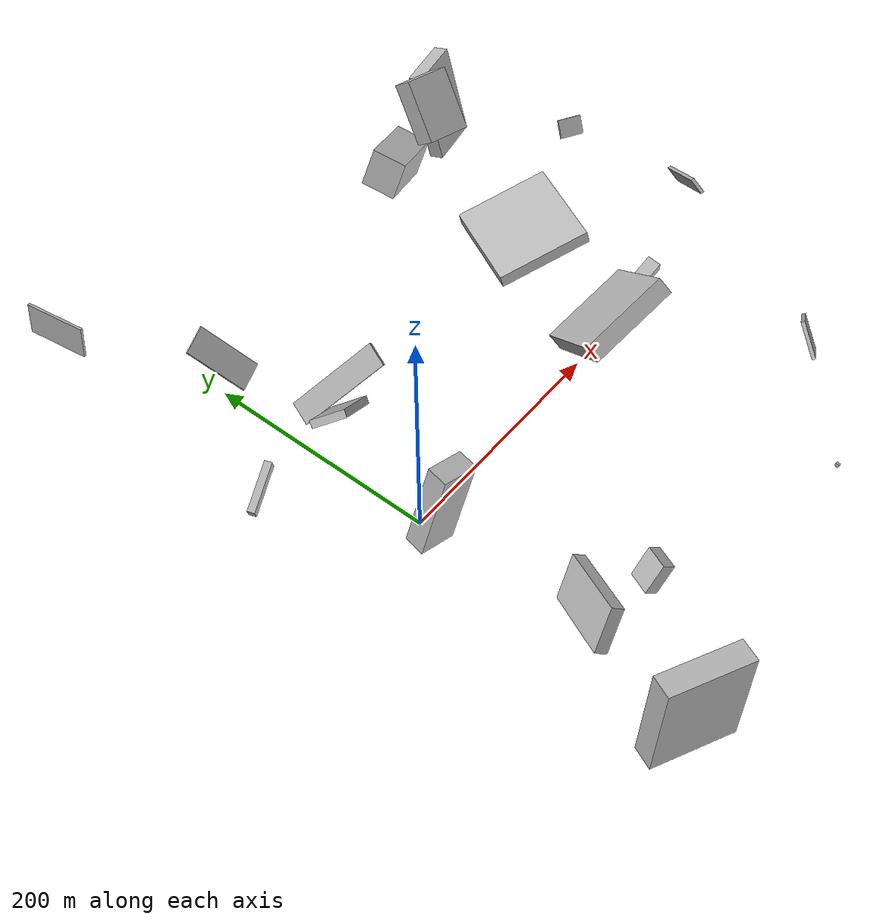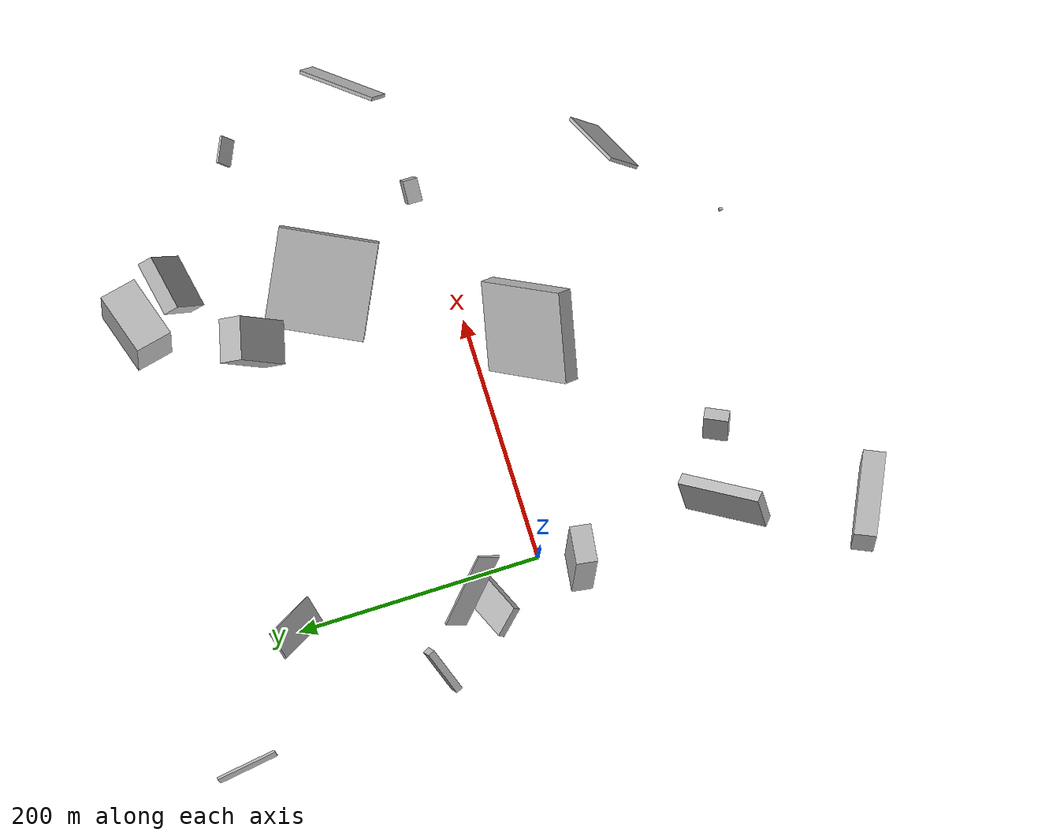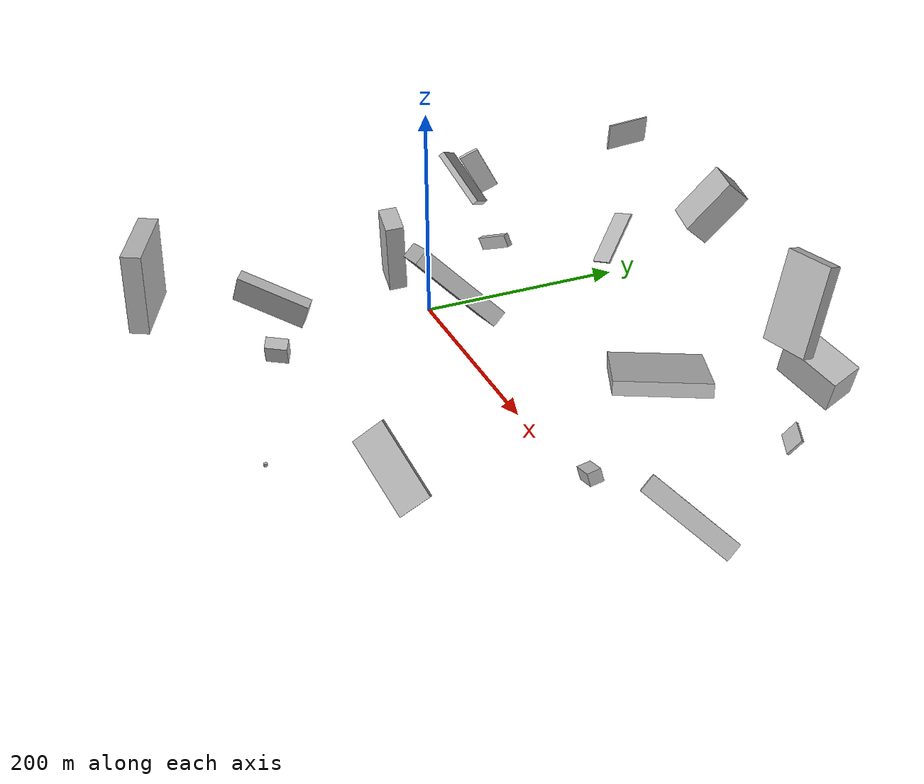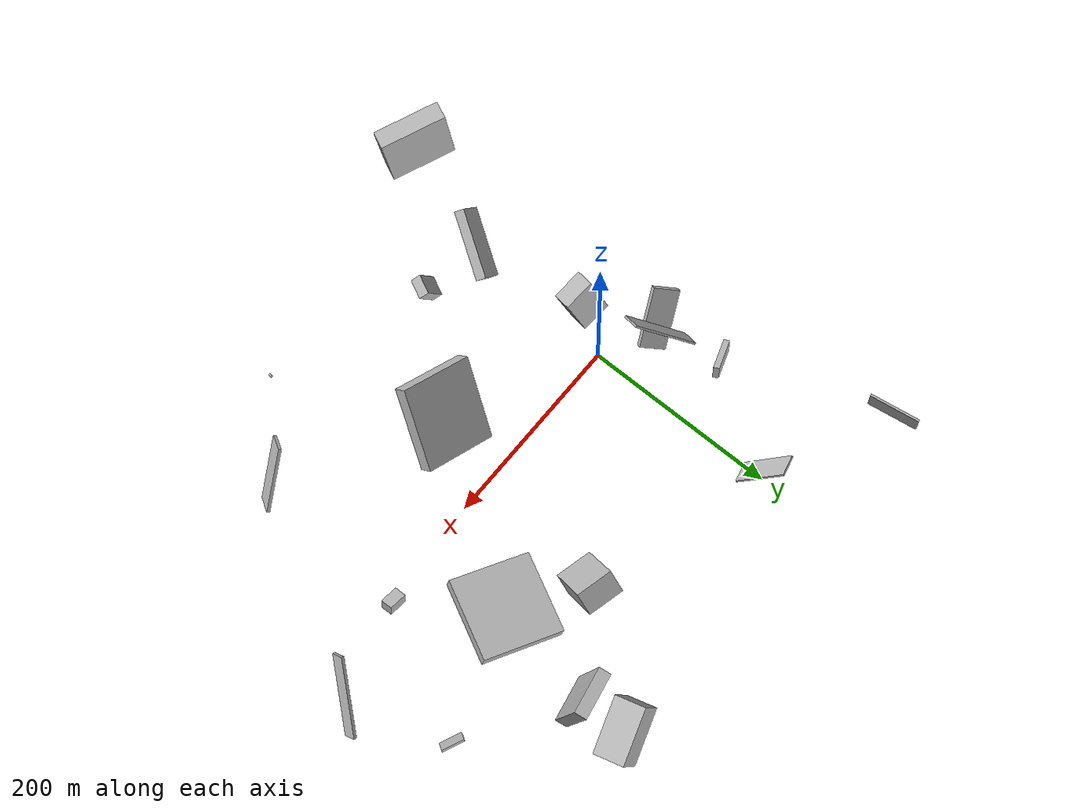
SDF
<sdf version="1.6">
 <world name="default">
  <scene>
   <sky><clouds><speed>12</speed></clouds></sky>
   <ambient>0.4 0.4 0.4 1</ambient>
   <background>0.7 0.7 0.7 1</background>
   <shadows>1</shadows>
  </scene>
  <gravity>0 0 -9.8066</gravity>
  <magnetic_field>6e-06 2.3e-05 -4.2e-05</magnetic_field>
  <physics default="0" name="default_physics" type="ode">
   <ode>
    <solver>
     <type>quick</type>
     <iters>10</iters>
     <sor>1.0</sor>
     <use_dynamic_moi_rescaling>0</use_dynamic_moi_rescaling>
    </solver>
    <constraints>
     <cfm>0</cfm>
     <erp>0.2</erp>
     <contact_max_correcting_vel>100</contact_max_correcting_vel>
     <contact_surface_layer>0.001</contact_surface_layer>
    </constraints>
   </ode>
   <max_step_size>0.004</max_step_size>
   <real_time_factor>1</real_time_factor>
   <real_time_update_rate>250</real_time_update_rate>
  </physics>
  <light name="sun" type="directional">
   <pose>0 0 10 0 0 0</pose>
   <diffuse>0.8 0.8 0.8 1</diffuse>
   <specular>0.2 0.2 0.2 1</specular>
   <attenuation>
    <range>1000</range>
    <constant>0.9</constant>
    <linear>0.01</linear>
    <quadratic>0.001</quadratic>
   </attenuation>
   <direction>-0.5 0.1 -0.9</direction>
  </light>
  <model name="building_1">
   <static>0</static>
   <pose>200.3315382109564 167.73316561958106 172.43727175205797 -1.6435767063657845 0.8646834956883054 -1.8841117268399794</pose>
   <link name="link">
    <gravity>0</gravity>
    <pose>0 0 17.0 0 0 0</pose>
    <collision name="collision"><geometry><box><size>49 22 34</size></box></geometry></collision>
    <visual name="visual">
     <cast_shadows>0</cast_shadows>
     <geometry><box><size>49 22 34</size></box></geometry>
     <material>
      <script>
       <uri>model://HANNAS_wall/materials/scripts</uri>
       <uri>model://HANNAS_wall/materials/textures</uri>
       <name>vrc/HANNAS_wall</name>
      </script>
     </material>
    </visual>
   </link>
  </model>
  <model name="building_2">
   <static>0</static>
   <pose>-5.708831802059858 -150.2561866858074 45.87605277605564 2.394368627862049 -0.9936780138925424 0.10498120433512236</pose>
   <link name="link">
    <gravity>0</gravity>
    <pose>0 0 5.0 0 0 0</pose>
    <collision name="collision"><geometry><box><size>36 69 10</size></box></geometry></collision>
    <visual name="visual">
     <cast_shadows>0</cast_shadows>
     <geometry><box><size>36 69 10</size></box></geometry>
     <material>
      <script>
       <uri>model://HANNAS_wall/materials/scripts</uri>
       <uri>model://HANNAS_wall/materials/textures</uri>
       <name>vrc/HANNAS_wall</name>
      </script>
     </material>
    </visual>
   </link>
  </model>
  <model name="building_3">
   <static>0</static>
   <pose>406.422334393799 37.00276107750537 29.30915987221004 -0.9745359785273352 -0.6041699364933157 -2.322519146541877</pose>
   <link name="link">
    <gravity>0</gravity>
    <pose>0 0 1.5 0 0 0</pose>
    <collision name="collision"><geometry><box><size>80 15 3</size></box></geometry></collision>
    <visual name="visual">
     <cast_shadows>0</cast_shadows>
     <geometry><box><size>80 15 3</size></box></geometry>
     <material>
      <script>
       <uri>model://HANNAS_wall/materials/scripts</uri>
       <uri>model://HANNAS_wall/materials/textures</uri>
       <name>vrc/HANNAS_wall</name>
      </script>
     </material>
    </visual>
   </link>
  </model>
  <model name="building_4">
   <static>0</static>
   <pose>-7.883798537974431 -273.1346166261488 70.31057449191256 1.478090430527328 -0.047819614127341585 -1.9944304967012831</pose>
   <link name="link">
    <gravity>0</gravity>
    <pose>0 0 33.5 0 0 0</pose>
    <collision name="collision"><geometry><box><size>18 80 67</size></box></geometry></collision>
    <visual name="visual">
     <cast_shadows>0</cast_shadows>
     <geometry><box><size>18 80 67</size></box></geometry>
     <material>
      <script>
       <uri>model://HANNAS_wall/materials/scripts</uri>
       <uri>model://HANNAS_wall/materials/textures</uri>
       <name>vrc/HANNAS_wall</name>
      </script>
     </material>
    </visual>
   </link>
  </model>
  <model name="building_5">
   <static>0</static>
   <pose>-11.809834344163491 -22.47620600870607 66.86843957737274 1.8807836468859909 -1.3176165159196265 -0.44711785129801784</pose>
   <link name="link">
    <gravity>0</gravity>
    <pose>0 0 8.5 0 0 0</pose>
    <collision name="collision"><geometry><box><size>74 31 17</size></box></geometry></collision>
    <visual name="visual">
     <cast_shadows>0</cast_shadows>
     <geometry><box><size>74 31 17</size></box></geometry>
     <material>
      <script>
       <uri>model://HANNAS_wall/materials/scripts</uri>
       <uri>model://HANNAS_wall/materials/textures</uri>
       <name>vrc/HANNAS_wall</name>
      </script>
     </material>
    </visual>
   </link>
  </model>
  <model name="building_6">
   <static>0</static>
   <pose>221.04965080736946 -220.5474340611753 27.484009514248775 2.132235954534575 -1.3893213809077443 -0.674213339615212</pose>
   <link name="link">
    <gravity>0</gravity>
    <pose>0 0 1.5 0 0 0</pose>
    <collision name="collision"><geometry><box><size>3 2 3</size></box></geometry></collision>
    <visual name="visual">
     <cast_shadows>0</cast_shadows>
     <geometry><box><size>3 2 3</size></box></geometry>
     <material>
      <script>
       <uri>model://HANNAS_wall/materials/scripts</uri>
       <uri>model://HANNAS_wall/materials/textures</uri>
       <name>vrc/HANNAS_wall</name>
      </script>
     </material>
    </visual>
   </link>
  </model>
  <model name="building_7">
   <static>0</static>
   <pose>-65.79949924888538 97.68833721122635 32.39817014988304 2.728871372720587 -0.1149013669838225 1.9714586682699948</pose>
   <link name="link">
    <gravity>0</gravity>
    <pose>0 0 6.5 0 0 0</pose>
    <collision name="collision"><geometry><box><size>6 40 13</size></box></geometry></collision>
    <visual name="visual">
     <cast_shadows>0</cast_shadows>
     <geometry><box><size>6 40 13</size></box></geometry>
     <material>
      <script>
       <uri>model://HANNAS_wall/materials/scripts</uri>
       <uri>model://HANNAS_wall/materials/textures</uri>
       <name>vrc/HANNAS_wall</name>
      </script>
     </material>
    </visual>
   </link>
  </model>
  <model name="building_8">
   <static>0</static>
   <pose>2.648048435450778 199.13558872419713 40.951467434021396 2.725484737770362 -0.7492039871950522 2.108428278983083</pose>
   <link name="link">
    <gravity>0</gravity>
    <pose>0 0 1.0 0 0 0</pose>
    <collision name="collision"><geometry><box><size>56 24 2</size></box></geometry></collision>
    <visual name="visual">
     <cast_shadows>0</cast_shadows>
     <geometry><box><size>56 24 2</size></box></geometry>
     <material>
      <script>
       <uri>model://HANNAS_wall/materials/scripts</uri>
       <uri>model://HANNAS_wall/materials/textures</uri>
       <name>vrc/HANNAS_wall</name>
      </script>
     </material>
    </visual>
   </link>
  </model>
  <model name="building_9">
   <static>0</static>
   <pose>320.42941648443644 8.498035882389233 14.116386753261772 -2.58079656572 1.2363318748680592 0.5332728704312685</pose>
   <link name="link">
    <gravity>0</gravity>
    <pose>0 0 9.5 0 0 0</pose>
    <collision name="collision"><geometry><box><size>11 12 19</size></box></geometry></collision>
    <visual name="visual">
     <cast_shadows>0</cast_shadows>
     <geometry><box><size>11 12 19</size></box></geometry>
     <material>
      <script>
       <uri>model://HANNAS_wall/materials/scripts</uri>
       <uri>model://HANNAS_wall/materials/textures</uri>
       <name>vrc/HANNAS_wall</name>
      </script>
     </material>
    </visual>
   </link>
  </model>
  <model name="building_10">
   <static>0</static>
   <pose>182.15743810514223 -17.712886831589064 92.95393695320924 0.5147825775917774 0.7475150259602629 -1.4185380710275715</pose>
   <link name="link">
    <gravity>0</gravity>
    <pose>0 0 40.0 0 0 0</pose>
    <collision name="collision"><geometry><box><size>14 73 80</size></box></geometry></collision>
    <visual name="visual">
     <cast_shadows>0</cast_shadows>
     <geometry><box><size>14 73 80</size></box></geometry>
     <material>
      <script>
       <uri>model://HANNAS_wall/materials/scripts</uri>
       <uri>model://HANNAS_wall/materials/textures</uri>
       <name>vrc/HANNAS_wall</name>
      </script>
     </material>
    </visual>
   </link>
  </model>
  <model name="building_11">
   <static>0</static>
   <pose>278.08349963837696 248.13770149910084 41.025801499832426 -2.8365939425368376 -0.2267115166957192 1.8037718191563432</pose>
   <link name="link">
    <gravity>0</gravity>
    <pose>0 0 17.5 0 0 0</pose>
    <collision name="collision"><geometry><box><size>31 56 35</size></box></geometry></collision>
    <visual name="visual">
     <cast_shadows>0</cast_shadows>
     <geometry><box><size>31 56 35</size></box></geometry>
     <material>
      <script>
       <uri>model://HANNAS_wall/materials/scripts</uri>
       <uri>model://HANNAS_wall/materials/textures</uri>
       <name>vrc/HANNAS_wall</name>
      </script>
     </material>
    </visual>
   </link>
  </model>
  <model name="building_12">
   <static>0</static>
   <pose>287.38689217245434 202.87310981482534 64.7588125098775 -0.23460602856486248 -0.011445166912248629 0.18661570221263343</pose>
   <link name="link">
    <gravity>0</gravity>
    <pose>0 0 40.0 0 0 0</pose>
    <collision name="collision"><geometry><box><size>44 12 80</size></box></geometry></collision>
    <visual name="visual">
     <cast_shadows>0</cast_shadows>
     <geometry><box><size>44 12 80</size></box></geometry>
     <material>
      <script>
       <uri>model://HANNAS_wall/materials/scripts</uri>
       <uri>model://HANNAS_wall/materials/textures</uri>
       <name>vrc/HANNAS_wall</name>
      </script>
     </material>
    </visual>
   </link>
  </model>
  <model name="building_13">
   <static>0</static>
   <pose>291.52404341267567 -157.3177644402415 42.64815021668994 0.7754928482888316 0.37060901507290406 2.2963321272916994</pose>
   <link name="link">
    <gravity>0</gravity>
    <pose>0 0 15.0 0 0 0</pose>
    <collision name="collision"><geometry><box><size>3 65 30</size></box></geometry></collision>
    <visual name="visual">
     <cast_shadows>0</cast_shadows>
     <geometry><box><size>3 65 30</size></box></geometry>
     <material>
      <script>
       <uri>model://HANNAS_wall/materials/scripts</uri>
       <uri>model://HANNAS_wall/materials/textures</uri>
       <name>vrc/HANNAS_wall</name>
      </script>
     </material>
    </visual>
   </link>
  </model>
  <model name="building_14">
   <static>0</static>
   <pose>275.0608578369813 135.3562423108878 48.092730195450116 -1.5646066035601152 -1.3236451614972407 2.6693979972057016</pose>
   <link name="link">
    <gravity>0</gravity>
    <pose>0 0 40.0 0 0 0</pose>
    <collision name="collision"><geometry><box><size>12 80 80</size></box></geometry></collision>
    <visual name="visual">
     <cast_shadows>0</cast_shadows>
     <geometry><box><size>12 80 80</size></box></geometry>
     <material>
      <script>
       <uri>model://HANNAS_wall/materials/scripts</uri>
       <uri>model://HANNAS_wall/materials/textures</uri>
       <name>vrc/HANNAS_wall</name>
      </script>
     </material>
    </visual>
   </link>
  </model>
  <model name="building_15">
   <static>0</static>
   <pose>-27.362729645517845 45.83605250285322 118.28415102768477 -0.767018422235026 -0.387794241868407 -0.8221070310585825</pose>
   <link name="link">
    <gravity>0</gravity>
    <pose>0 0 3.0 0 0 0</pose>
    <collision name="collision"><geometry><box><size>26 58 6</size></box></geometry></collision>
    <visual name="visual">
     <cast_shadows>0</cast_shadows>
     <geometry><box><size>26 58 6</size></box></geometry>
     <material>
      <script>
       <uri>model://HANNAS_wall/materials/scripts</uri>
       <uri>model://HANNAS_wall/materials/textures</uri>
       <name>vrc/HANNAS_wall</name>
      </script>
     </material>
    </visual>
   </link>
  </model>
  <model name="building_16">
   <static>0</static>
   <pose>-92.81592495445591 265.82455254956363 110.25556815741247 -1.6706285468535869 0.008673259362509254 -1.4254695083153224</pose>
   <link name="link">
    <gravity>0</gravity>
    <pose>0 0 1.0 0 0 0</pose>
    <collision name="collision"><geometry><box><size>49 27 2</size></box></geometry></collision>
    <visual name="visual">
     <cast_shadows>0</cast_shadows>
     <geometry><box><size>49 27 2</size></box></geometry>
     <material>
      <script>
       <uri>model://HANNAS_wall/materials/scripts</uri>
       <uri>model://HANNAS_wall/materials/textures</uri>
       <name>vrc/HANNAS_wall</name>
      </script>
     </material>
    </visual>
   </link>
  </model>
  <model name="building_17">
   <static>0</static>
   <pose>377.8395635647649 137.36619226964936 44.855843669813254 0.10994015692924296 0.6227852601412543 1.2019334013917624</pose>
   <link name="link">
    <gravity>0</gravity>
    <pose>0 0 8.0 0 0 0</pose>
    <collision name="collision"><geometry><box><size>2 22 16</size></box></geometry></collision>
    <visual name="visual">
     <cast_shadows>0</cast_shadows>
     <geometry><box><size>2 22 16</size></box></geometry>
     <material>
      <script>
       <uri>model://HANNAS_wall/materials/scripts</uri>
       <uri>model://HANNAS_wall/materials/textures</uri>
       <name>vrc/HANNAS_wall</name>
      </script>
     </material>
    </visual>
   </link>
  </model>
  <model name="building_18">
   <static>0</static>
   <pose>53.52772774847121 -175.7485273819459 26.957977806096004 1.757260358308933 1.0021404798507219 2.8514822374174473</pose>
   <link name="link">
    <gravity>0</gravity>
    <pose>0 0 10.0 0 0 0</pose>
    <collision name="collision"><geometry><box><size>26 11 20</size></box></geometry></collision>
    <visual name="visual">
     <cast_shadows>0</cast_shadows>
     <geometry><box><size>26 11 20</size></box></geometry>
     <material>
      <script>
       <uri>model://HANNAS_wall/materials/scripts</uri>
       <uri>model://HANNAS_wall/materials/textures</uri>
       <name>vrc/HANNAS_wall</name>
      </script>
     </material>
    </visual>
   </link>
  </model>
  <model name="building_19">
   <static>0</static>
   <pose>-15.335104602971967 59.00125013956277 131.09432713546357 -2.230737578962992 0.45272145413712933 -1.8356631179774427</pose>
   <link name="link">
    <gravity>0</gravity>
    <pose>0 0 1.0 0 0 0</pose>
    <collision name="collision"><geometry><box><size>18 80 2</size></box></geometry></collision>
    <visual name="visual">
     <cast_shadows>0</cast_shadows>
     <geometry><box><size>18 80 2</size></box></geometry>
     <material>
      <script>
       <uri>model://HANNAS_wall/materials/scripts</uri>
       <uri>model://HANNAS_wall/materials/textures</uri>
       <name>vrc/HANNAS_wall</name>
      </script>
     </material>
    </visual>
   </link>
  </model>
 </world>
</sdf>
